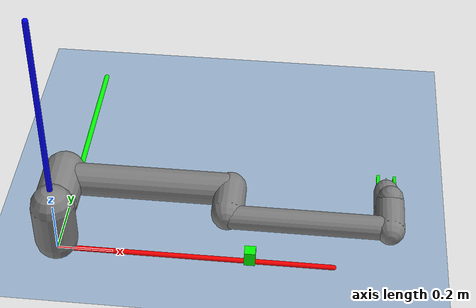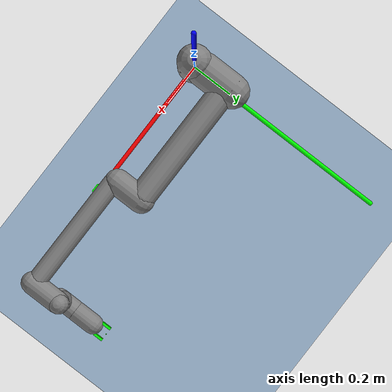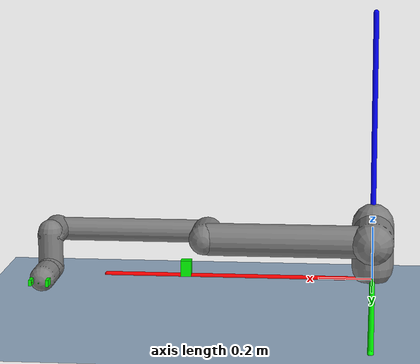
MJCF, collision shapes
<mujoco model="ur10e single cube">

  <!-- Include the scene setup - Robot file is in Scene -->
  <include file="mjx_scene_position.xml"/>

  <worldbody>
    <!-- Box to pick -->
    <body name="box" pos="0.7 0 0.03">
      <freejoint/>
      <geom type="box" name="box" size="0.02 0.02 0.03" condim="4"
       friction="1 .03 .003" rgba="0 1 0 1" contype="1" conaffinity="3" solref="0.01 1"/>
    </body>

    <!-- mocap target -->
    <body mocap="true" name="mocap_target">
      <geom type="box" size="0.02 0.02 0.03" rgba="1 0 0 0.2" contype="0" conaffinity="0"/>
    </body>
  </worldbody>

  <!-- Keyframes -->
  <keyframe>
    <!-- Task-specific home: includes cube position -->
    <key name="task_home"
      qpos="0.75 -2.2 1.57 -1.57 -1.57 0 0.025 0.025
      0.7 0.2 0.03
      1 0 0 0"
      ctrl="0.75 -2.2 1.57 -1.57 -1.57 0 0.05"/>

    <!-- Low home position from camera file -->
    <key name="low_home"
      qpos="0 -1.7 2.25 -2.15 -1.5 -1.5 0 0
      0.7 0.2 0.03
      1 0 0 0"
      ctrl="0 -1.7 2.25 -2.15 -1.5 -1.5 0"/>

    <key name="tucked"
      qpos="0 -2.36 2.36 -1.57 -1.57 0 0 0
      0.7 0.2 0.03
      1 0 0 0"
      ctrl="0 -2.36 2.36 -1.57 -1.57 0 0"/>
  </keyframe>

  <!-- Optional sensors -->
  <include file="ur10_sensor.xml"/>

</mujoco>

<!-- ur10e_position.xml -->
<mujoco model="ur10e">
  <compiler angle="radian" eulerseq="xyz" meshdir="../universal_robots_ur10e/assets" autolimits="true"/>
  <option integrator="implicitfast"/>

  <!-- Default settings -->
  <default>
    <default class="ur10e">
      <material specular="0.5" shininess="0.25"/>
      <joint axis="0 1 0" range="-6.28319 6.28319" armature="0.1"/>
      <position ctrlrange="-6.2831 6.2831"/>
      <general biastype="affine" ctrlrange="-6.2831 6.2831" gainprm="5000" biasprm="0 -5000 -500"/>

      <default class="size4">
        <joint damping="10"/>
        <general forcerange="-330 330"/>
      </default>

      <default class="size3">
        <joint damping="5"/>
        <general forcerange="-150 150"/>
        <default class="size3_limited">
          <joint range="-3.1415 3.1415"/>
          <general ctrlrange="-3.1415 3.1415"/>
        </default>
      </default>

      <default class="size2">
        <joint damping="2"/>
        <general forcerange="-56 56"/>
      </default>

      <default class="visual">
        <geom type="mesh" contype="0" conaffinity="0" group="2"/>
      </default>

      <!-- Collision geometry -->
      <default class="collision">
        <geom type="capsule" group="3"/>
      </default>

      <!-- End-effector collision -->
      <default class="eef_collision">
        <geom type="capsule" group="3"/>
      </default>
      <!-- Real collision geoms (meshes) -->
      <default class="hande_collision">
        <geom type="mesh" group="3" rgba="0.7 0.7 0.7 1"/>
      </default>

      <site size="0.001" rgba="0.5 0.5 0.5 0.3" group="4"/>
    </default>
    <default class="hande">
      <default class="hande_right_finger">
        <joint type="slide" range="0 0.025" actuatorfrcrange="-100 100" />
      </default>
      <default class="hande_left_finger">
        <joint type="slide" range="0 0.025" actuatorfrcrange="-100 100" />
      </default>
    </default>
  </default>

  <asset>
    <material class="ur10e" name="black" rgba="0.033 0.033 0.033 1"/>
    <material class="ur10e" name="jointgray" rgba="0.278 0.278 0.278 1"/>
    <material class="ur10e" name="linkgray" rgba="0.82 0.82 0.82 1"/>
    <material class="ur10e" name="urblue" rgba="0.49 0.678 0.8 1"/>

    <!-- UR10 meshes -->
    <mesh file="base_0.obj"/>
    <mesh file="base_1.obj"/>
    <mesh file="shoulder_0.obj"/>
    <mesh file="shoulder_1.obj"/>
    <mesh file="shoulder_2.obj"/>
    <mesh file="upperarm_0.obj"/>
    <mesh file="upperarm_1.obj"/>
    <mesh file="upperarm_2.obj"/>
    <mesh file="upperarm_3.obj"/>
    <mesh file="forearm_0.obj"/>
    <mesh file="forearm_1.obj"/>
    <mesh file="forearm_2.obj"/>
    <mesh file="forearm_3.obj"/>
    <mesh file="wrist1_0.obj"/>
    <mesh file="wrist1_1.obj"/>
    <mesh file="wrist1_2.obj"/>
    <mesh file="wrist2_0.obj"/>
    <mesh file="wrist2_1.obj"/>
    <mesh file="wrist2_2.obj"/>
    <mesh file="wrist3.obj"/>

    <!-- Robotiq Hand-E meshes -->
    <mesh name="hande" file="hande.stl"/>
    <mesh name="coupler" file="coupler.stl"/>
    <mesh name="left_finger" file="finger_2.stl"/>
    <mesh name="right_finger" file="finger_1.stl"/>
    <mesh name="hande_col" file="hande-collision.stl"/>
    <mesh name="hande_col_right" file="finger_1-collision.stl"/>
    <mesh name="hande_col_left" file="finger_2-collision.stl"/>

  </asset>

<!-- ================= UR10 Kinematic Chain ================= -->
  <worldbody>
    <light name="spotlight" mode="targetbodycom" target="wrist_2_link" pos="0 -1 2"/>

    <body name="base" childclass="ur10e">
      <inertial mass="4.0" pos="0 0 0" diaginertia="0.0061063308908 0.0061063308908 0.01125"/>
      <geom mesh="base_0" material="black" class="visual"/>
      <geom mesh="base_1" material="jointgray" class="visual"/>

      <!-- pos="0 0 0.181" means it is attached in Z-Axis relative to the Base center-->
      <body name="shoulder_link" pos="0 0 0.181">
        <inertial pos="0 1 0" mass="7.778" diaginertia="0.0314743 0.0314743 0.0218756"/>
        <joint name="shoulder_pan_joint" class="size4" axis="0 0 1"/>
        <geom mesh="shoulder_0" material="urblue" class="visual"/>
        <geom mesh="shoulder_1" material="black" class="visual"/>
        <geom mesh="shoulder_2" material="jointgray" class="visual"/>
        <geom class="collision" size="0.078 0.08" pos="0 0 -0.05"/>

        <body name="upper_arm_link" pos="0 0.176 0" quat="1 0 1 0">
          <inertial pos="0 0 0.3065" mass="12.93" diaginertia="0.423074 0.423074 0.0363656"/>
          <joint name="shoulder_lift_joint" class="size4"/>
          <geom mesh="upperarm_0" material="black" class="visual"/>
          <geom mesh="upperarm_1" material="jointgray" class="visual"/>
          <geom mesh="upperarm_2" material="urblue" class="visual"/>
          <geom mesh="upperarm_3" material="linkgray" class="visual"/>
          <geom class="collision" pos="0 -0.05 0" quat="1 1 0 0" size="0.078 0.08"/>
          <geom class="collision" size="0.06 0.3" pos="0 0 0.3"/>

          <body name="forearm_link" pos="0 -0.137 0.613">
            <inertial pos="0 0 0.2855" mass="3.87" diaginertia="0.11059 0.11059 0.0108844"/>
            <joint name="elbow_joint" class="size3_limited"/>
            <geom mesh="forearm_0" material="urblue" class="visual"/>
            <geom mesh="forearm_1" material="black" class="visual"/>
            <geom mesh="forearm_2" material="jointgray" class="visual"/>
            <geom mesh="forearm_3" material="linkgray" class="visual"/>
            <geom class="collision" pos="0 0.08 0" quat="1 1 0 0" size="0.058 0.065"/>
            <geom class="collision" size="0.043 0.28" pos="0 0 0.29"/>

            <body name="wrist_1_link" pos="0 0 0.571" quat="1 0 1 0">
              <inertial pos="0 0.135 0" quat="0.5 0.5 -0.5 0.5" mass="1.96"
                diaginertia="0.0055125 0.00510825 0.00510825"/>
              <joint name="wrist_1_joint" class="size2"/>
              <geom mesh="wrist1_0" material="black" class="visual"/>
              <geom mesh="wrist1_1" material="urblue" class="visual"/>
              <geom mesh="wrist1_2" material="jointgray" class="visual"/>
              <geom class="collision" pos="0 0.06 0" quat="1 1 0 0" size="0.05 0.07"/>

              <body name="wrist_2_link" pos="0 0.135 0">
                <inertial pos="0 0 0.12" quat="0.5 0.5 -0.5 0.5" mass="1.96"
                  diaginertia="0.0055125 0.00510825 0.00510825"/>
                <joint name="wrist_2_joint" axis="0 0 1" class="size2"/>
                <geom mesh="wrist2_0" material="black" class="visual"/>
                <geom mesh="wrist2_1" material="urblue" class="visual"/>
                <geom mesh="wrist2_2" material="jointgray" class="visual"/>
                <geom class="collision" size="0.046 0.065" pos="0 0 0.05"/>
                <geom class="collision" pos="0 0.028 0.12" quat="1 1 0 0" size="0.046 0.043"/>

                <body name="wrist_3_link" pos="0 0 0.12">
                  <inertial pos="0 0.092 0" quat="0 1 -1 0" mass="0.202"
                    diaginertia="0.000204525 0.000144346 0.000144346"/>
                  <joint name="wrist_3_joint" class="size2"/>
                  <geom material="linkgray" mesh="wrist3" class="visual"/>
                  <geom name="attachment_site_collision" class="eef_collision" pos="0 0.1245 0" quat="1 1 0 0" size="0.046 0.0475"/>
                  <site name="attachment_site" pos="0 0.1 0" quat="-1 1 0 0"/>

                  <!-- ================= Hand-E Integration ================= -->
                  <body name="robotiq_hande_mount" pos="0 0.1 0" quat="-1 1 0 0">

                    <!-- Main hand body -->
                    <!--contype="0" conaffinity="0" to make it non-colliding with other objects -->
                    <geom name="hande_coupler" mesh="coupler" class="visual" rgba="0.1 0.1 0.1 1"/>
                    <!--geom mesh="hande_col" class="hande_collision" contype="3" conaffinity="1"/-->
                    <geom name="hand_base" mesh="hande" class="visual" rgba="0.1 0.1 0.1 1"/>

                    <!-- tcp is the distance position for the gripper to box -->
                    <site name="tcp" pos="0 0 0.145" rgba="0 1 0 1" size="0.002" group="2"/>

                    <!-- Left finger -->
                    <body name="hande_left_finger" pos="0 0 0.099">
                      <inertial pos="0.02262 -0.00759 0.00738"
                                quat="0.871952 0.0369732 -0.211073 0.440205"
                                mass="0.03804"
                                diaginertia="1.22763e-05 1.22763e-05 1.22763e-05"/>
                      <joint name="hande_left_finger_joint" class="hande_left_finger" axis="1 0 0" range="0 0.025"/>3
                      <geom name="left_finger" mesh="left_finger" class="visual" rgba="0.4 0.4 0.4 1"/>
                      <!--geom  class="hande_collision" mesh="hande_col_left" contype="2" conaffinity="1"/-->
                      <geom name="left_finger_collision"
                            type="box" size="0.0055 0.011 0.023" pos="-0.0305 0 0.025" rgba="0 1 0 0.3"
                            contype="1" conaffinity="1" group="3"
                            solref="0.01 1"
                            solimp="0.99 0.995 0.01 0.5 2"
                            friction="2 0.005 0.0001"/>
                      <site name="left_finger_touch_site" pos="-0.025 0 0.04" size="0.002" rgba="1 0 0 1" group="2"/>
                    </body>

                    <!-- Right finger -->
                    <body name="hande_right_finger" pos="0 0 0.099">
                      <inertial pos="-0.02262 0.00759 0.00738"
                                quat="0.871952 -0.0369732 0.211073 0.440205"
                                mass="0.03804"
                                diaginertia="1.22763e-05 1.22763e-05 1.22763e-05"/>
                      <joint name="hande_right_finger_joint" class="hande_right_finger" axis="-1 0 0"/>
                      <geom name="right_finger" mesh="right_finger" class="visual" rgba="0.4 0.4 0.4 1"/>
                      <!--geom class="hande_collision" mesh="hande_col_right" contype="4" conaffinity="1"/-->
                      <geom name="right_finger_collision"
                            type="box" size="0.0056 0.012 0.023" pos="0.0305 0 0.025" rgba="0 1 0 0.3"
                            contype="1" conaffinity="1" group="3"
                            solref="0.01 1"
                            solimp="0.99 0.995 0.01 0.5 2"
                            friction="2 0.005 0.0001"/>
                      <site name="right_finger_touch_site" pos="0.025 0 0.04" size="0.002" rgba="1 0 0 1" group="2"/>
                    </body>
                  </body>
                </body>
              </body>
            </body>
          </body>
        </body>
      </body>
    </body>
  </worldbody>

  <!-- ================= Hand-E Mechanics ================= -->
  <contact>
    <exclude body1="robotiq_hande_mount" body2="hande_left_finger"/>
    <exclude body1="robotiq_hande_mount" body2="hande_right_finger"/>
    <exclude body1="wrist_3_link" body2="hande_left_finger"/>
    <exclude body1="wrist_3_link" body2="hande_right_finger"/>

  </contact>

  <equality>
    <joint joint1="hande_left_finger_joint" joint2="hande_right_finger_joint"
       polycoef="0 1 0 0 0"
       solref="0.008 1"
       solimp="0.95 0.99 0.001"/>

  </equality>

  <tendon>
    <fixed name="split">
      <joint joint="hande_left_finger_joint" coef="0.5"/>
      <joint joint="hande_right_finger_joint" coef="0.5"/>
    </fixed>
  </tendon>

  <actuator>
    <!-- Arm actuators -->
    <general class="size4" name="shoulder_pan" joint="shoulder_pan_joint"/>
    <general class="size4" name="shoulder_lift" joint="shoulder_lift_joint"/>
    <general class="size3_limited" name="elbow" joint="elbow_joint"/>
    <general class="size2" name="wrist_1" joint="wrist_1_joint"/>
    <general class="size2" name="wrist_2" joint="wrist_2_joint"/>
    <general class="size2" name="wrist_3" joint="wrist_3_joint"/>

    <!-- Hand-E tendon actuator (as original) -->
    <position name="hande_fingers_actuator"
        ctrlrange="0 0.05"
        tendon="split"
        kp="100"
        kv="1"
        forcerange="-300 300"
        ctrllimited="true"
        forcelimited="true"
        />
  </actuator>

<keyframe>
  <key name="home"
    qpos="0 -1.5708 1.5708 -1.5708 -1.5708 0 0 0"
    ctrl="0 -1.5708 1.5708 -1.5708 -1.5708 0 0"/>

  <key name="vertical_home"
    qpos="0 -1.5708 0 -1.5708 0 0 0 0"
    ctrl="0 -1.5708 0 -1.5708 0 0 0"/>

</keyframe>
</mujoco>

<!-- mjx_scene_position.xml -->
<mujoco model="ur10e scene">
<include file="../universal_robots_ur10e/ur10e_position.xml"/>

  <worldbody>
  <!-- World coordinate frame visualization -->
    <geom name="world_x_axis" type="capsule" size="0.01 0.5" pos="0.5 0 0"
          quat="0.7071 0 0.7071 0" rgba="1 0 0 1" contype="0" conaffinity="0"/>
    <geom name="world_y_axis" type="capsule" size="0.01 0.5" pos="0 0.5 0"
          quat="0.7071 -0.7071 0 0" rgba="0 1 0 1" contype="0" conaffinity="0"/>
    <geom name="world_z_axis" type="capsule" size="0.01 0.5" pos="0 0 0.5"
          rgba="0 0 1 1" contype="0" conaffinity="0"/>

    <!--My floor definition-->
    <light pos="0 0 3" dir="0 0 -1" directional="true"/>
    <geom name="floor" type="plane" size="0 0 0.05" material="groundplane" contype="1" conaffinity="3" solref="0.001 1"/>
    <!-- Default diagonal top-down -->
    <camera name="front" fovy="42" pos="1.176 0.001 0.483" xyaxes="0.006 1.000 -0.000 -0.720 0.004 0.694"/>

    <!-- Side view from 120 degrees -->
    <body name="camera_target" pos="0.4 0 0.4">
      <geom type="sphere" size="0.005" rgba="1 0 0 0" contype="0" conaffinity="0"/>
    </body>
    <camera name="side_130" pos="0.8 -1.1 1.2" mode="targetbody" target="camera_target" fovy="70"/>
    <camera name="box_detail" pos="0.8 -1.1 0.8" mode="targetbody" target="box" fovy="35"/>
  </worldbody>

  <statistic center="0.4 0 0.4" extent="1"/>

  <option timestep="0.005" iterations="12" ls_iterations="12"
  integrator="implicitfast">
    <flag eulerdamp="disable"/>

  </option>

  <custom>
    <numeric data="12" name="max_contact_points"/>
  </custom>

  <visual>
    <headlight diffuse=".8 .8 .8" ambient=".2 .2 .2" specular="1 1 1"/>
    <rgba force="1 0 0 1"/>
    <global azimuth="-40" elevation="-30" offwidth="960" offheight="720"/>
    <map force="0.01"/>
    <quality shadowsize="8192"/>
    <scale contactwidth="0.075" contactheight="0.025" forcewidth="0.05" com="0.05" framewidth="0.01" framelength="0.2"/>
  </visual>

  <asset>
    <!-- Sky and floor materials -->
    <texture type="skybox" builtin="gradient" rgb1="0.8 0.9 1" rgb2="0.4 0.5 0.6" width="800" height="800"/>
    <texture type="2d" name="grid" builtin="checker" rgb1="0.8 0.9 1" rgb2="0.4 0.5 0.6" width="512" height="512" mark="edge" markrgb="0.2 0.2 0.2"/>
    <material name="groundplane" texture="grid" texrepeat="5 5" texuniform="true" reflectance="0.2"/>
  </asset>
</mujoco>

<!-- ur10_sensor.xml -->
<mujoco>
  <sensor>

    <contact name="left_finger_pad_floor_found" geom1="left_finger_collision" geom2="floor" reduce="mindist" num="1" data="found"/>
    <contact name="right_finger_pad_floor_found" geom1="right_finger_collision" geom2="floor" reduce="mindist" num="1" data="found"/>
    <contact name="hand_capsule_floor_found" geom1="attachment_site_collision" geom2="floor" reduce="mindist" num="1" data="found"/>
    <contact name="box_hand_found" geom1="obj_box" geom2="attachment_site_collision" reduce="mindist" num="1" data="found"/>

    <!-- Box contact (for grasp detection) -->
    <contact name="left_finger_box_contact" geom1="left_finger_collision" geom2="obj_box" reduce="mindist" num="1" data="found"/>
    <contact name="right_finger_box_contact" geom1="right_finger_collision" geom2="obj_box" reduce="mindist" num="1" data="found"/>
    <contact name="left_finger_sphere_contact" geom1="left_finger_collision" geom2="obj_sphere" reduce="mindist" num="1" data="found"/>
    <contact name="right_finger_sphere_contact" geom1="right_finger_collision" geom2="obj_sphere" reduce="mindist" num="1" data="found"/>
    <contact name="left_finger_cylinder_contact" geom1="left_finger_collision" geom2="obj_cylinder" reduce="mindist" num="1" data="found"/>
    <contact name="right_finger_cylinder_contact" geom1="right_finger_collision" geom2="obj_cylinder" reduce="mindist" num="1" data="found"/>

    <!-- Position tracking -->
    <framepos name="tcp_position" objtype="site" objname="tcp"/>
    <framepos name="box_position" objtype="body" objname="obj_box"/>
    <framepos name="sphere_position" objtype="body" objname="obj_sphere"/>
    <framepos name="cylinder_position" objtype="body" objname="obj_cylinder"/>

  </sensor>
</mujoco>
